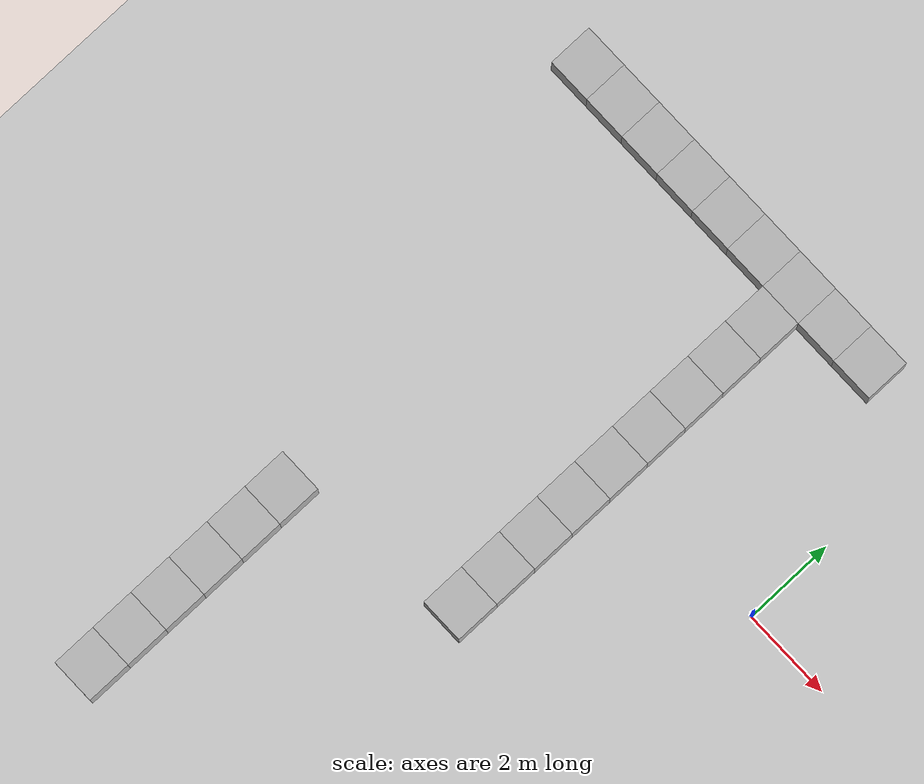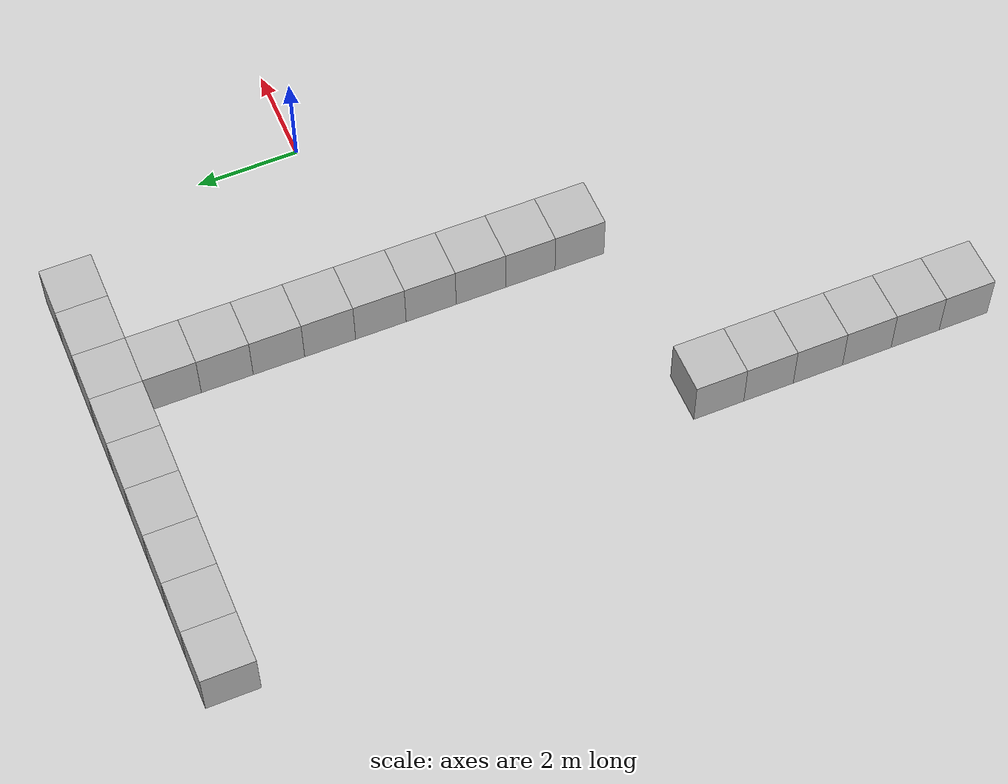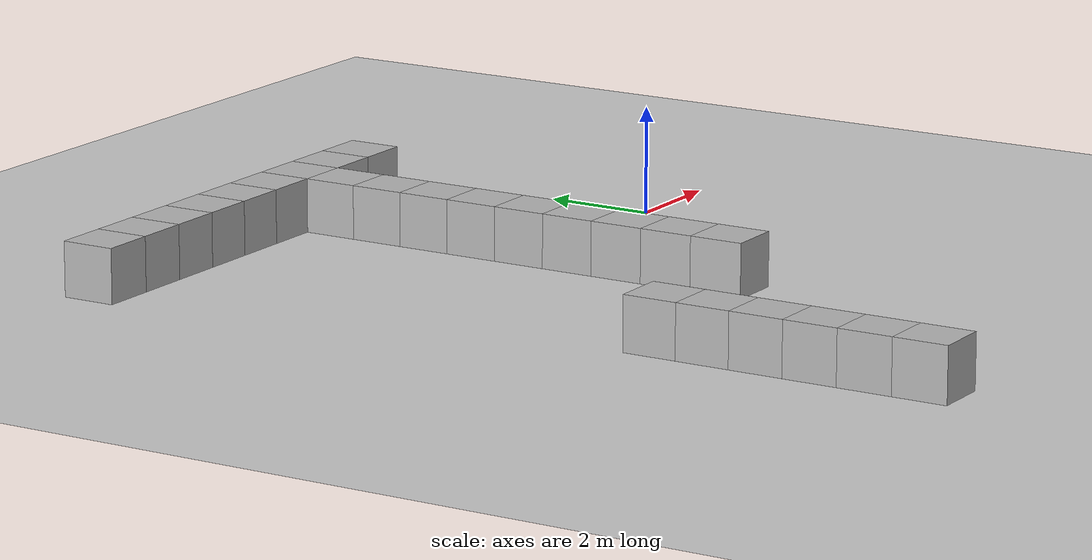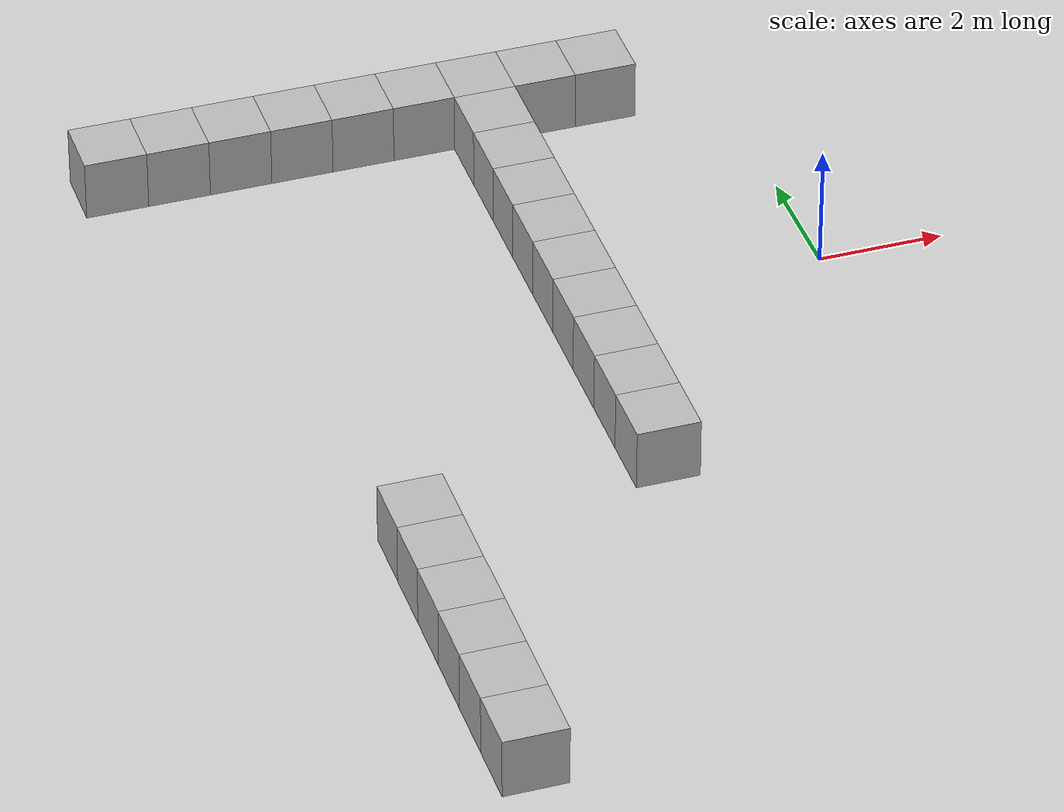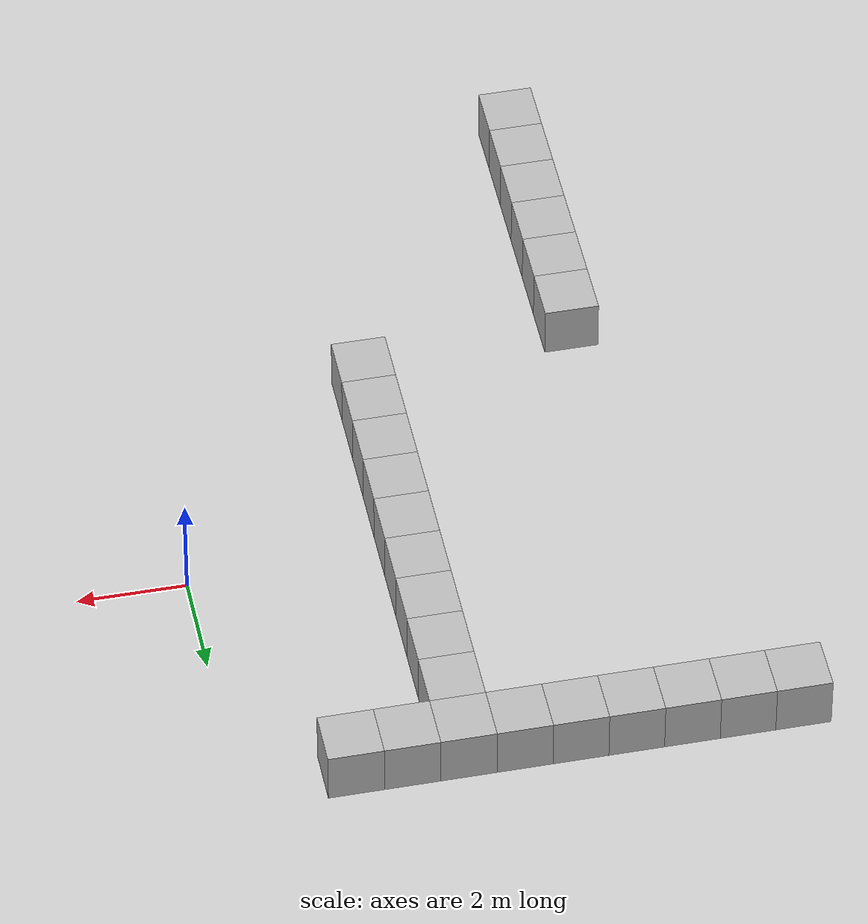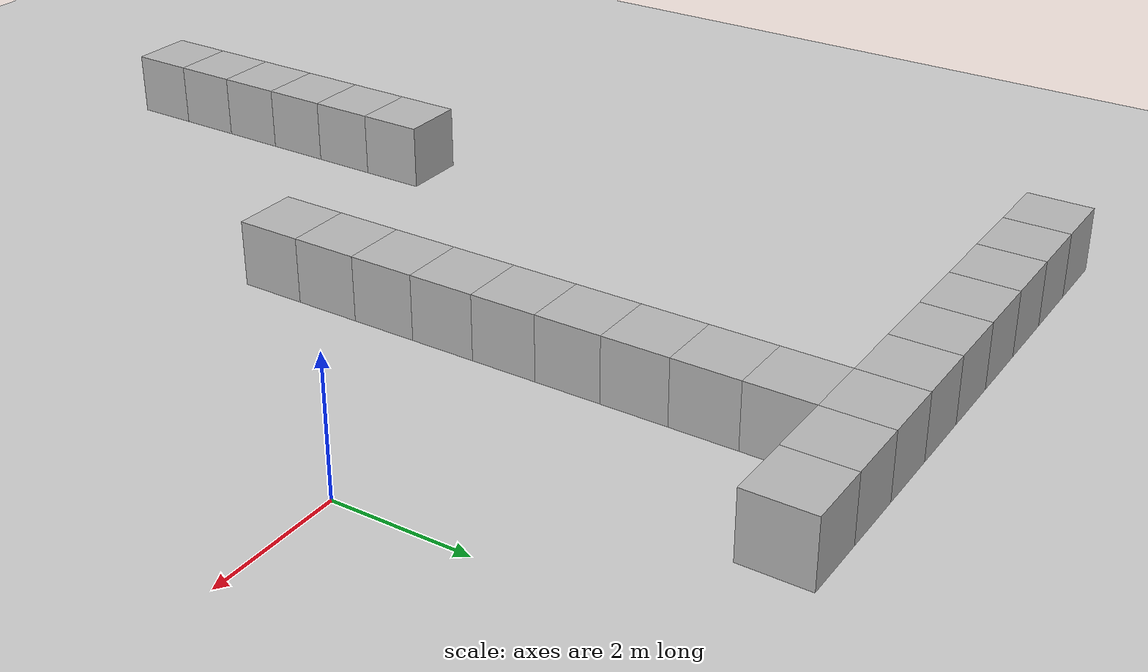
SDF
<?xml version="1.0" ?>
<sdf version="1.5">
  <world name="default">
    <include>
      <uri>model://ground_plane</uri>
    </include>
    <include>
      <uri>model://sun</uri>
    </include>
    <model name="box0">
      <pose>-8 -10 0.5 0 0 0</pose>
      <link name="link">
        <collision name="collision">
          <geometry>
            <box>
              <size>1 1 1</size>
            </box>
          </geometry>
        </collision>
        <visual name="visual">
          <geometry>
            <box>
              <size>1 1 1</size>
            </box>
          </geometry>
          <material>
            <script>Gazebo/WoodPallet</script>
          </material>
        </visual>
      </link>
    </model>
    <model name="box1">
      <pose>-8 -9 0.5 0 0 0</pose>
      <link name="link">
        <collision name="collision">
          <geometry>
            <box>
              <size>1 1 1</size>
            </box>
          </geometry>
        </collision>
        <visual name="visual">
          <geometry>
            <box>
              <size>1 1 1</size>
            </box>
          </geometry>
          <material>
            <script>Gazebo/WoodPallet</script>
          </material>
        </visual>
      </link>
    </model>
    <model name="box2">
      <pose>-8 -8 0.5 0 0 0</pose>
      <link name="link">
        <collision name="collision">
          <geometry>
            <box>
              <size>1 1 1</size>
            </box>
          </geometry>
        </collision>
        <visual name="visual">
          <geometry>
            <box>
              <size>1 1 1</size>
            </box>
          </geometry>
          <material>
            <script>Gazebo/WoodPallet</script>
          </material>
        </visual>
      </link>
    </model>
    <model name="box3">
      <pose>-8 -7 0.5 0 0 0</pose>
      <link name="link">
        <collision name="collision">
          <geometry>
            <box>
              <size>1 1 1</size>
            </box>
          </geometry>
        </collision>
        <visual name="visual">
          <geometry>
            <box>
              <size>1 1 1</size>
            </box>
          </geometry>
          <material>
            <script>Gazebo/WoodPallet</script>
          </material>
        </visual>
      </link>
    </model>
    <model name="box4">
      <pose>-8 -6 0.5 0 0 0</pose>
      <link name="link">
        <collision name="collision">
          <geometry>
            <box>
              <size>1 1 1</size>
            </box>
          </geometry>
        </collision>
        <visual name="visual">
          <geometry>
            <box>
              <size>1 1 1</size>
            </box>
          </geometry>
          <material>
            <script>Gazebo/WoodPallet</script>
          </material>
        </visual>
      </link>
    </model>
    <model name="box5">
      <pose>-8 -5 0.5 0 0 0</pose>
      <link name="link">
        <collision name="collision">
          <geometry>
            <box>
              <size>1 1 1</size>
            </box>
          </geometry>
        </collision>
        <visual name="visual">
          <geometry>
            <box>
              <size>1 1 1</size>
            </box>
          </geometry>
          <material>
            <script>Gazebo/WoodPallet</script>
          </material>
        </visual>
      </link>
    </model>
    <model name="box6">
      <pose>-10 5 0.5 0 0 0</pose>
      <link name="link">
        <collision name="collision">
          <geometry>
            <box>
              <size>1 1 1</size>
            </box>
          </geometry>
        </collision>
        <visual name="visual">
          <geometry>
            <box>
              <size>1 1 1</size>
            </box>
          </geometry>
          <material>
            <script>Gazebo/WoodPallet</script>
          </material>
        </visual>
      </link>
    </model>
    <model name="box7">
      <pose>-9 5 0.5 0 0 0</pose>
      <link name="link">
        <collision name="collision">
          <geometry>
            <box>
              <size>1 1 1</size>
            </box>
          </geometry>
        </collision>
        <visual name="visual">
          <geometry>
            <box>
              <size>1 1 1</size>
            </box>
          </geometry>
          <material>
            <script>Gazebo/WoodPallet</script>
          </material>
        </visual>
      </link>
    </model>
    <model name="box8">
      <pose>-8 5 0.5 0 0 0</pose>
      <link name="link">
        <collision name="collision">
          <geometry>
            <box>
              <size>1 1 1</size>
            </box>
          </geometry>
        </collision>
        <visual name="visual">
          <geometry>
            <box>
              <size>1 1 1</size>
            </box>
          </geometry>
          <material>
            <script>Gazebo/WoodPallet</script>
          </material>
        </visual>
      </link>
    </model>
    <model name="box9">
      <pose>-7 5 0.5 0 0 0</pose>
      <link name="link">
        <collision name="collision">
          <geometry>
            <box>
              <size>1 1 1</size>
            </box>
          </geometry>
        </collision>
        <visual name="visual">
          <geometry>
            <box>
              <size>1 1 1</size>
            </box>
          </geometry>
          <material>
            <script>Gazebo/WoodPallet</script>
          </material>
        </visual>
      </link>
    </model>
    <model name="box10">
      <pose>-6 5 0.5 0 0 0</pose>
      <link name="link">
        <collision name="collision">
          <geometry>
            <box>
              <size>1 1 1</size>
            </box>
          </geometry>
        </collision>
        <visual name="visual">
          <geometry>
            <box>
              <size>1 1 1</size>
            </box>
          </geometry>
          <material>
            <script>Gazebo/WoodPallet</script>
          </material>
        </visual>
      </link>
    </model>
    <model name="box11">
      <pose>-5 5 0.5 0 0 0</pose>
      <link name="link">
        <collision name="collision">
          <geometry>
            <box>
              <size>1 1 1</size>
            </box>
          </geometry>
        </collision>
        <visual name="visual">
          <geometry>
            <box>
              <size>1 1 1</size>
            </box>
          </geometry>
          <material>
            <script>Gazebo/WoodPallet</script>
          </material>
        </visual>
      </link>
    </model>
    <model name="box12">
      <pose>-4 5 0.5 0 0 0</pose>
      <link name="link">
        <collision name="collision">
          <geometry>
            <box>
              <size>1 1 1</size>
            </box>
          </geometry>
        </collision>
        <visual name="visual">
          <geometry>
            <box>
              <size>1 1 1</size>
            </box>
          </geometry>
          <material>
            <script>Gazebo/WoodPallet</script>
          </material>
        </visual>
      </link>
    </model>
    <model name="box13">
      <pose>-3 5 0.5 0 0 0</pose>
      <link name="link">
        <collision name="collision">
          <geometry>
            <box>
              <size>1 1 1</size>
            </box>
          </geometry>
        </collision>
        <visual name="visual">
          <geometry>
            <box>
              <size>1 1 1</size>
            </box>
          </geometry>
          <material>
            <script>Gazebo/WoodPallet</script>
          </material>
        </visual>
      </link>
    </model>
    <model name="box14">
      <pose>-2 5 0.5 0 0 0</pose>
      <link name="link">
        <collision name="collision">
          <geometry>
            <box>
              <size>1 1 1</size>
            </box>
          </geometry>
        </collision>
        <visual name="visual">
          <geometry>
            <box>
              <size>1 1 1</size>
            </box>
          </geometry>
          <material>
            <script>Gazebo/WoodPallet</script>
          </material>
        </visual>
      </link>
    </model>
    <model name="box15">
      <pose>-4 4 0.5 0 0 0</pose>
      <link name="link">
        <collision name="collision">
          <geometry>
            <box>
              <size>1 1 1</size>
            </box>
          </geometry>
        </collision>
        <visual name="visual">
          <geometry>
            <box>
              <size>1 1 1</size>
            </box>
          </geometry>
          <material>
            <script>Gazebo/WoodPallet</script>
          </material>
        </visual>
      </link>
    </model>
    <model name="box16">
      <pose>-4 3 0.5 0 0 0</pose>
      <link name="link">
        <collision name="collision">
          <geometry>
            <box>
              <size>1 1 1</size>
            </box>
          </geometry>
        </collision>
        <visual name="visual">
          <geometry>
            <box>
              <size>1 1 1</size>
            </box>
          </geometry>
          <material>
            <script>Gazebo/WoodPallet</script>
          </material>
        </visual>
      </link>
    </model>
    <model name="box17">
      <pose>-4 2 0.5 0 0 0</pose>
      <link name="link">
        <collision name="collision">
          <geometry>
            <box>
              <size>1 1 1</size>
            </box>
          </geometry>
        </collision>
        <visual name="visual">
          <geometry>
            <box>
              <size>1 1 1</size>
            </box>
          </geometry>
          <material>
            <script>Gazebo/WoodPallet</script>
          </material>
        </visual>
      </link>
    </model>
    <model name="box18">
      <pose>-4 1 0.5 0 0 0</pose>
      <link name="link">
        <collision name="collision">
          <geometry>
            <box>
              <size>1 1 1</size>
            </box>
          </geometry>
        </collision>
        <visual name="visual">
          <geometry>
            <box>
              <size>1 1 1</size>
            </box>
          </geometry>
          <material>
            <script>Gazebo/WoodPallet</script>
          </material>
        </visual>
      </link>
    </model>
    <model name="box19">
      <pose>-4 0 0.5 0 0 0</pose>
      <link name="link">
        <collision name="collision">
          <geometry>
            <box>
              <size>1 1 1</size>
            </box>
          </geometry>
        </collision>
        <visual name="visual">
          <geometry>
            <box>
              <size>1 1 1</size>
            </box>
          </geometry>
          <material>
            <script>Gazebo/WoodPallet</script>
          </material>
        </visual>
      </link>
    </model>
    <model name="box20">
      <pose>-4 -1 0.5 0 0 0</pose>
      <link name="link">
        <collision name="collision">
          <geometry>
            <box>
              <size>1 1 1</size>
            </box>
          </geometry>
        </collision>
        <visual name="visual">
          <geometry>
            <box>
              <size>1 1 1</size>
            </box>
          </geometry>
          <material>
            <script>Gazebo/WoodPallet</script>
          </material>
        </visual>
      </link>
    </model>
    <model name="box21">
      <pose>-4 -2 0.5 0 0 0</pose>
      <link name="link">
        <collision name="collision">
          <geometry>
            <box>
              <size>1 1 1</size>
            </box>
          </geometry>
        </collision>
        <visual name="visual">
          <geometry>
            <box>
              <size>1 1 1</size>
            </box>
          </geometry>
          <material>
            <script>Gazebo/WoodPallet</script>
          </material>
        </visual>
      </link>
    </model>
    <model name="box22">
      <pose>-4 -3 0.5 0 0 0</pose>
      <link name="link">
        <collision name="collision">
          <geometry>
            <box>
              <size>1 1 1</size>
            </box>
          </geometry>
        </collision>
        <visual name="visual">
          <geometry>
            <box>
              <size>1 1 1</size>
            </box>
          </geometry>
          <material>
            <script>Gazebo/WoodPallet</script>
          </material>
        </visual>
      </link>
    </model>
    <model name="box23">
      <pose>-4 -4 0.5 0 0 0</pose>
      <link name="link">
        <collision name="collision">
          <geometry>
            <box>
              <size>1 1 1</size>
            </box>
          </geometry>
        </collision>
        <visual name="visual">
          <geometry>
            <box>
              <size>1 1 1</size>
            </box>
          </geometry>
          <material>
            <script>Gazebo/WoodPallet</script>
          </material>
        </visual>
      </link>
    </model>

  </world>
</sdf>
